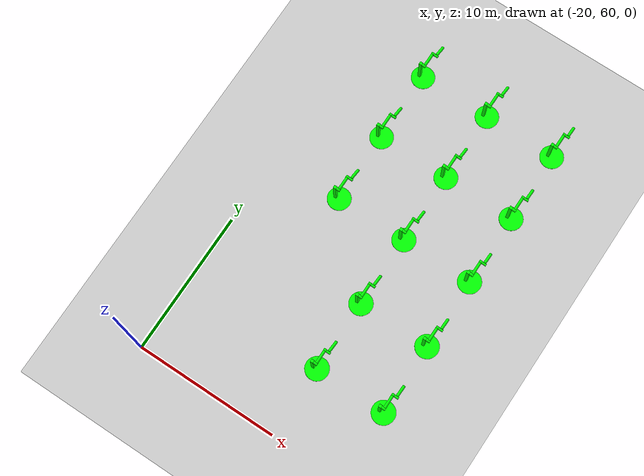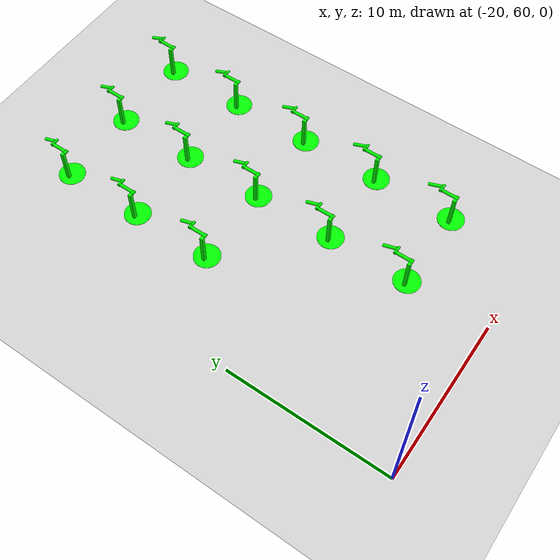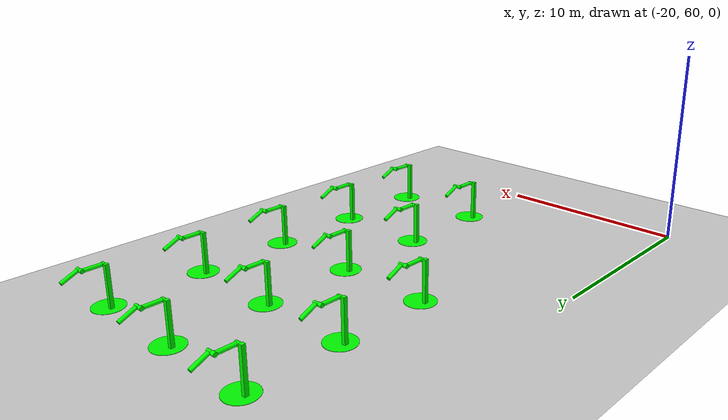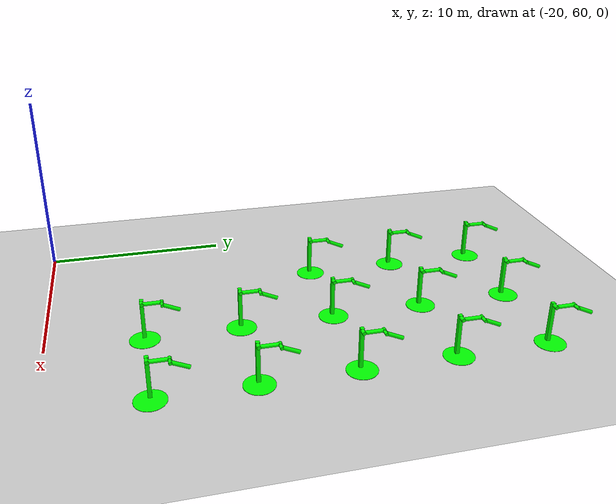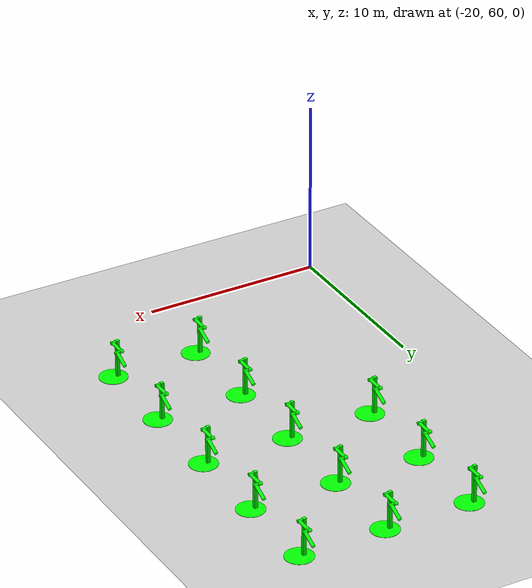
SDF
<sdf version="1.6">
 <world name="double_pendulums">
  <model name="ground_plane">
   <static>true</static>
   <link name="link">
    <collision name="collision">
     <geometry><plane><normal>0 0 1</normal><size>100 100</size></plane></geometry>
    </collision>
    <visual name="visual">
     <geometry><plane><normal>0 0 1</normal><size>100 100</size></plane></geometry>
     <material>
      <ambient>0.8 0.8 0.8 1</ambient>
      <diffuse>0.8 0.8 0.8 1</diffuse>
      <specular>0.8 0.8 0.8 1</specular>
     </material>
    </visual>
   </link>
  </model>
  <model name="dbl_pendulum_333">
   <pose>-10 65 0 0 0 0</pose>
   <link name="base">
    <inertial><mass>100</mass></inertial>
    <visual name="vis_plate_on_ground">
     <pose>0 0 0.01 0 0 0</pose>
     <geometry><cylinder><radius>0.8</radius><length>0.02</length></cylinder></geometry>
     <material><ambient>0 1 0 1</ambient><diffuse>0 1 0 1</diffuse><specular>0 1 0 1</specular></material>
    </visual>
    <visual name="vis_pole">
     <pose>-0.275 0 1.1 0 0 0</pose>
     <geometry><box><size>0.2 0.2 2.2</size></box></geometry>
     <material><ambient>0 1 0 1</ambient><diffuse>0 1 0 1</diffuse><specular>0 1 0 1</specular></material>
    </visual>
    <collision name="col_plate_on_ground">
     <pose>0 0 0.01 0 0 0</pose>
     <geometry><cylinder><radius>0.8</radius><length>0.02</length></cylinder></geometry>
    </collision>
    <collision name="col_pole">
     <pose>-0.275 0 1.1 0 0 0</pose>
     <geometry><box><size>0.2 0.2 2.2</size></box></geometry>
    </collision>
   </link>
   <link name="upper_link">
    <pose>0 0 2.1 -1.5708 0 0</pose>
    <inertial><pose>0 0 0.5 0 0 0</pose></inertial>
    <visual name="vis_upper_joint">
     <pose>-0.05 0 0 0 1.5708 0</pose>
     <geometry><cylinder><radius>0.1</radius><length>0.3</length></cylinder></geometry>
     <material><ambient>0 1 0 1</ambient><diffuse>0 1 0 1</diffuse><specular>0 1 0 1</specular></material>
    </visual>
    <visual name="vis_lower_joint">
     <pose>0 0 1.0 0 1.5708 0</pose>
     <geometry><cylinder><radius>0.1</radius><length>0.2</length></cylinder></geometry>
     <material><ambient>0 1 0 1</ambient><diffuse>0 1 0 1</diffuse><specular>0 1 0 1</specular></material>
    </visual>
    <visual name="vis_cylinder">
     <pose>0 0 0.5 0 0 0</pose>
     <geometry><cylinder><radius>0.1</radius><length>0.9</length></cylinder></geometry>
     <material><ambient>0 1 0 1</ambient><diffuse>0 1 0 1</diffuse><specular>0 1 0 1</specular></material>
    </visual>
    <collision name="col_upper_joint">
     <pose>-0.05 0 0 0 1.5708 0</pose>
     <geometry><cylinder><radius>0.1</radius><length>0.3</length></cylinder></geometry>
    </collision>
    <collision name="col_lower_joint">
     <pose>0 0 1.0 0 1.5708 0</pose>
     <geometry><cylinder><radius>0.1</radius><length>0.2</length></cylinder></geometry>
    </collision>
    <collision name="col_cylinder">
     <pose>0 0 0.5 0 0 0</pose>
     <geometry><cylinder><radius>0.1</radius><length>0.9</length></cylinder></geometry>
    </collision>
   </link>
   <link name="lower_link">
    <pose>0.25 1.0 2.1 -2 0 0</pose>
    <inertial><pose>0 0 0.5 0 0 0</pose></inertial>
    <visual name="vis_lower_joint">
     <pose>0 0 0 0 1.5708 0</pose>
     <geometry><cylinder><radius>0.08</radius><length>0.3</length></cylinder></geometry>
     <material><ambient>0 1 0 1</ambient><diffuse>0 1 0 1</diffuse><specular>0 1 0 1</specular></material>
    </visual>
    <visual name="vis_cylinder">
     <pose>0 0 0.5 0 0 0</pose>
     <geometry><cylinder><radius>0.1</radius><length>0.9</length></cylinder></geometry>
     <material><ambient>0 1 0 1</ambient><diffuse>0 1 0 1</diffuse><specular>0 1 0 1</specular></material>
    </visual>
    <collision name="col_lower_joint">
     <pose>0 0 0 0 1.5708 0</pose>
     <geometry><cylinder><radius>0.08</radius><length>0.3</length></cylinder></geometry>
    </collision>
    <collision name="col_cylinder">
     <pose>0 0 0.5 0 0 0</pose>
     <geometry><cylinder><radius>0.1</radius><length>0.9</length></cylinder></geometry>
    </collision>
   </link>
   <joint name="upper_joint" type="revolute">
    <parent>base</parent>
    <child>upper_link</child>
    <axis><xyz>1.0 0 0</xyz></axis>
   </joint>
   <joint name="lower_joint" type="revolute">
    <parent>upper_link</parent>
    <child>lower_link</child>
    <axis><xyz>1.0 0 0</xyz></axis>
   </joint>
  </model>
  <model name="dbl_pendulum_334">
   <pose>-5 65 0 0 0 0</pose>
   <link name="base">
    <inertial><mass>100</mass></inertial>
    <visual name="vis_plate_on_ground">
     <pose>0 0 0.01 0 0 0</pose>
     <geometry><cylinder><radius>0.8</radius><length>0.02</length></cylinder></geometry>
     <material><ambient>0 1 0 1</ambient><diffuse>0 1 0 1</diffuse><specular>0 1 0 1</specular></material>
    </visual>
    <visual name="vis_pole">
     <pose>-0.275 0 1.1 0 0 0</pose>
     <geometry><box><size>0.2 0.2 2.2</size></box></geometry>
     <material><ambient>0 1 0 1</ambient><diffuse>0 1 0 1</diffuse><specular>0 1 0 1</specular></material>
    </visual>
    <collision name="col_plate_on_ground">
     <pose>0 0 0.01 0 0 0</pose>
     <geometry><cylinder><radius>0.8</radius><length>0.02</length></cylinder></geometry>
    </collision>
    <collision name="col_pole">
     <pose>-0.275 0 1.1 0 0 0</pose>
     <geometry><box><size>0.2 0.2 2.2</size></box></geometry>
    </collision>
   </link>
   <link name="upper_link">
    <pose>0 0 2.1 -1.5708 0 0</pose>
    <inertial><pose>0 0 0.5 0 0 0</pose></inertial>
    <visual name="vis_upper_joint">
     <pose>-0.05 0 0 0 1.5708 0</pose>
     <geometry><cylinder><radius>0.1</radius><length>0.3</length></cylinder></geometry>
     <material><ambient>0 1 0 1</ambient><diffuse>0 1 0 1</diffuse><specular>0 1 0 1</specular></material>
    </visual>
    <visual name="vis_lower_joint">
     <pose>0 0 1.0 0 1.5708 0</pose>
     <geometry><cylinder><radius>0.1</radius><length>0.2</length></cylinder></geometry>
     <material><ambient>0 1 0 1</ambient><diffuse>0 1 0 1</diffuse><specular>0 1 0 1</specular></material>
    </visual>
    <visual name="vis_cylinder">
     <pose>0 0 0.5 0 0 0</pose>
     <geometry><cylinder><radius>0.1</radius><length>0.9</length></cylinder></geometry>
     <material><ambient>0 1 0 1</ambient><diffuse>0 1 0 1</diffuse><specular>0 1 0 1</specular></material>
    </visual>
    <collision name="col_upper_joint">
     <pose>-0.05 0 0 0 1.5708 0</pose>
     <geometry><cylinder><radius>0.1</radius><length>0.3</length></cylinder></geometry>
    </collision>
    <collision name="col_lower_joint">
     <pose>0 0 1.0 0 1.5708 0</pose>
     <geometry><cylinder><radius>0.1</radius><length>0.2</length></cylinder></geometry>
    </collision>
    <collision name="col_cylinder">
     <pose>0 0 0.5 0 0 0</pose>
     <geometry><cylinder><radius>0.1</radius><length>0.9</length></cylinder></geometry>
    </collision>
   </link>
   <link name="lower_link">
    <pose>0.25 1.0 2.1 -2 0 0</pose>
    <inertial><pose>0 0 0.5 0 0 0</pose></inertial>
    <visual name="vis_lower_joint">
     <pose>0 0 0 0 1.5708 0</pose>
     <geometry><cylinder><radius>0.08</radius><length>0.3</length></cylinder></geometry>
     <material><ambient>0 1 0 1</ambient><diffuse>0 1 0 1</diffuse><specular>0 1 0 1</specular></material>
    </visual>
    <visual name="vis_cylinder">
     <pose>0 0 0.5 0 0 0</pose>
     <geometry><cylinder><radius>0.1</radius><length>0.9</length></cylinder></geometry>
     <material><ambient>0 1 0 1</ambient><diffuse>0 1 0 1</diffuse><specular>0 1 0 1</specular></material>
    </visual>
    <collision name="col_lower_joint">
     <pose>0 0 0 0 1.5708 0</pose>
     <geometry><cylinder><radius>0.08</radius><length>0.3</length></cylinder></geometry>
    </collision>
    <collision name="col_cylinder">
     <pose>0 0 0.5 0 0 0</pose>
     <geometry><cylinder><radius>0.1</radius><length>0.9</length></cylinder></geometry>
    </collision>
   </link>
   <joint name="upper_joint" type="revolute">
    <parent>base</parent>
    <child>upper_link</child>
    <axis><xyz>1.0 0 0</xyz></axis>
   </joint>
   <joint name="lower_joint" type="revolute">
    <parent>upper_link</parent>
    <child>lower_link</child>
    <axis><xyz>1.0 0 0</xyz></axis>
   </joint>
  </model>
  <model name="dbl_pendulum_358">
   <pose>-10 70 0 0 0 0</pose>
   <link name="base">
    <inertial><mass>100</mass></inertial>
    <visual name="vis_plate_on_ground">
     <pose>0 0 0.01 0 0 0</pose>
     <geometry><cylinder><radius>0.8</radius><length>0.02</length></cylinder></geometry>
     <material><ambient>0 1 0 1</ambient><diffuse>0 1 0 1</diffuse><specular>0 1 0 1</specular></material>
    </visual>
    <visual name="vis_pole">
     <pose>-0.275 0 1.1 0 0 0</pose>
     <geometry><box><size>0.2 0.2 2.2</size></box></geometry>
     <material><ambient>0 1 0 1</ambient><diffuse>0 1 0 1</diffuse><specular>0 1 0 1</specular></material>
    </visual>
    <collision name="col_plate_on_ground">
     <pose>0 0 0.01 0 0 0</pose>
     <geometry><cylinder><radius>0.8</radius><length>0.02</length></cylinder></geometry>
    </collision>
    <collision name="col_pole">
     <pose>-0.275 0 1.1 0 0 0</pose>
     <geometry><box><size>0.2 0.2 2.2</size></box></geometry>
    </collision>
   </link>
   <link name="upper_link">
    <pose>0 0 2.1 -1.5708 0 0</pose>
    <inertial><pose>0 0 0.5 0 0 0</pose></inertial>
    <visual name="vis_upper_joint">
     <pose>-0.05 0 0 0 1.5708 0</pose>
     <geometry><cylinder><radius>0.1</radius><length>0.3</length></cylinder></geometry>
     <material><ambient>0 1 0 1</ambient><diffuse>0 1 0 1</diffuse><specular>0 1 0 1</specular></material>
    </visual>
    <visual name="vis_lower_joint">
     <pose>0 0 1.0 0 1.5708 0</pose>
     <geometry><cylinder><radius>0.1</radius><length>0.2</length></cylinder></geometry>
     <material><ambient>0 1 0 1</ambient><diffuse>0 1 0 1</diffuse><specular>0 1 0 1</specular></material>
    </visual>
    <visual name="vis_cylinder">
     <pose>0 0 0.5 0 0 0</pose>
     <geometry><cylinder><radius>0.1</radius><length>0.9</length></cylinder></geometry>
     <material><ambient>0 1 0 1</ambient><diffuse>0 1 0 1</diffuse><specular>0 1 0 1</specular></material>
    </visual>
    <collision name="col_upper_joint">
     <pose>-0.05 0 0 0 1.5708 0</pose>
     <geometry><cylinder><radius>0.1</radius><length>0.3</length></cylinder></geometry>
    </collision>
    <collision name="col_lower_joint">
     <pose>0 0 1.0 0 1.5708 0</pose>
     <geometry><cylinder><radius>0.1</radius><length>0.2</length></cylinder></geometry>
    </collision>
    <collision name="col_cylinder">
     <pose>0 0 0.5 0 0 0</pose>
     <geometry><cylinder><radius>0.1</radius><length>0.9</length></cylinder></geometry>
    </collision>
   </link>
   <link name="lower_link">
    <pose>0.25 1.0 2.1 -2 0 0</pose>
    <inertial><pose>0 0 0.5 0 0 0</pose></inertial>
    <visual name="vis_lower_joint">
     <pose>0 0 0 0 1.5708 0</pose>
     <geometry><cylinder><radius>0.08</radius><length>0.3</length></cylinder></geometry>
     <material><ambient>0 1 0 1</ambient><diffuse>0 1 0 1</diffuse><specular>0 1 0 1</specular></material>
    </visual>
    <visual name="vis_cylinder">
     <pose>0 0 0.5 0 0 0</pose>
     <geometry><cylinder><radius>0.1</radius><length>0.9</length></cylinder></geometry>
     <material><ambient>0 1 0 1</ambient><diffuse>0 1 0 1</diffuse><specular>0 1 0 1</specular></material>
    </visual>
    <collision name="col_lower_joint">
     <pose>0 0 0 0 1.5708 0</pose>
     <geometry><cylinder><radius>0.08</radius><length>0.3</length></cylinder></geometry>
    </collision>
    <collision name="col_cylinder">
     <pose>0 0 0.5 0 0 0</pose>
     <geometry><cylinder><radius>0.1</radius><length>0.9</length></cylinder></geometry>
    </collision>
   </link>
   <joint name="upper_joint" type="revolute">
    <parent>base</parent>
    <child>upper_link</child>
    <axis><xyz>1.0 0 0</xyz></axis>
   </joint>
   <joint name="lower_joint" type="revolute">
    <parent>upper_link</parent>
    <child>lower_link</child>
    <axis><xyz>1.0 0 0</xyz></axis>
   </joint>
  </model>
  <model name="dbl_pendulum_359">
   <pose>-5 70 0 0 0 0</pose>
   <link name="base">
    <inertial><mass>100</mass></inertial>
    <visual name="vis_plate_on_ground">
     <pose>0 0 0.01 0 0 0</pose>
     <geometry><cylinder><radius>0.8</radius><length>0.02</length></cylinder></geometry>
     <material><ambient>0 1 0 1</ambient><diffuse>0 1 0 1</diffuse><specular>0 1 0 1</specular></material>
    </visual>
    <visual name="vis_pole">
     <pose>-0.275 0 1.1 0 0 0</pose>
     <geometry><box><size>0.2 0.2 2.2</size></box></geometry>
     <material><ambient>0 1 0 1</ambient><diffuse>0 1 0 1</diffuse><specular>0 1 0 1</specular></material>
    </visual>
    <collision name="col_plate_on_ground">
     <pose>0 0 0.01 0 0 0</pose>
     <geometry><cylinder><radius>0.8</radius><length>0.02</length></cylinder></geometry>
    </collision>
    <collision name="col_pole">
     <pose>-0.275 0 1.1 0 0 0</pose>
     <geometry><box><size>0.2 0.2 2.2</size></box></geometry>
    </collision>
   </link>
   <link name="upper_link">
    <pose>0 0 2.1 -1.5708 0 0</pose>
    <inertial><pose>0 0 0.5 0 0 0</pose></inertial>
    <visual name="vis_upper_joint">
     <pose>-0.05 0 0 0 1.5708 0</pose>
     <geometry><cylinder><radius>0.1</radius><length>0.3</length></cylinder></geometry>
     <material><ambient>0 1 0 1</ambient><diffuse>0 1 0 1</diffuse><specular>0 1 0 1</specular></material>
    </visual>
    <visual name="vis_lower_joint">
     <pose>0 0 1.0 0 1.5708 0</pose>
     <geometry><cylinder><radius>0.1</radius><length>0.2</length></cylinder></geometry>
     <material><ambient>0 1 0 1</ambient><diffuse>0 1 0 1</diffuse><specular>0 1 0 1</specular></material>
    </visual>
    <visual name="vis_cylinder">
     <pose>0 0 0.5 0 0 0</pose>
     <geometry><cylinder><radius>0.1</radius><length>0.9</length></cylinder></geometry>
     <material><ambient>0 1 0 1</ambient><diffuse>0 1 0 1</diffuse><specular>0 1 0 1</specular></material>
    </visual>
    <collision name="col_upper_joint">
     <pose>-0.05 0 0 0 1.5708 0</pose>
     <geometry><cylinder><radius>0.1</radius><length>0.3</length></cylinder></geometry>
    </collision>
    <collision name="col_lower_joint">
     <pose>0 0 1.0 0 1.5708 0</pose>
     <geometry><cylinder><radius>0.1</radius><length>0.2</length></cylinder></geometry>
    </collision>
    <collision name="col_cylinder">
     <pose>0 0 0.5 0 0 0</pose>
     <geometry><cylinder><radius>0.1</radius><length>0.9</length></cylinder></geometry>
    </collision>
   </link>
   <link name="lower_link">
    <pose>0.25 1.0 2.1 -2 0 0</pose>
    <inertial><pose>0 0 0.5 0 0 0</pose></inertial>
    <visual name="vis_lower_joint">
     <pose>0 0 0 0 1.5708 0</pose>
     <geometry><cylinder><radius>0.08</radius><length>0.3</length></cylinder></geometry>
     <material><ambient>0 1 0 1</ambient><diffuse>0 1 0 1</diffuse><specular>0 1 0 1</specular></material>
    </visual>
    <visual name="vis_cylinder">
     <pose>0 0 0.5 0 0 0</pose>
     <geometry><cylinder><radius>0.1</radius><length>0.9</length></cylinder></geometry>
     <material><ambient>0 1 0 1</ambient><diffuse>0 1 0 1</diffuse><specular>0 1 0 1</specular></material>
    </visual>
    <collision name="col_lower_joint">
     <pose>0 0 0 0 1.5708 0</pose>
     <geometry><cylinder><radius>0.08</radius><length>0.3</length></cylinder></geometry>
    </collision>
    <collision name="col_cylinder">
     <pose>0 0 0.5 0 0 0</pose>
     <geometry><cylinder><radius>0.1</radius><length>0.9</length></cylinder></geometry>
    </collision>
   </link>
   <joint name="upper_joint" type="revolute">
    <parent>base</parent>
    <child>upper_link</child>
    <axis><xyz>1.0 0 0</xyz></axis>
   </joint>
   <joint name="lower_joint" type="revolute">
    <parent>upper_link</parent>
    <child>lower_link</child>
    <axis><xyz>1.0 0 0</xyz></axis>
   </joint>
  </model>
  <model name="dbl_pendulum_382">
   <pose>-15 75 0 0 0 0</pose>
   <link name="base">
    <inertial><mass>100</mass></inertial>
    <visual name="vis_plate_on_ground">
     <pose>0 0 0.01 0 0 0</pose>
     <geometry><cylinder><radius>0.8</radius><length>0.02</length></cylinder></geometry>
     <material><ambient>0 1 0 1</ambient><diffuse>0 1 0 1</diffuse><specular>0 1 0 1</specular></material>
    </visual>
    <visual name="vis_pole">
     <pose>-0.275 0 1.1 0 0 0</pose>
     <geometry><box><size>0.2 0.2 2.2</size></box></geometry>
     <material><ambient>0 1 0 1</ambient><diffuse>0 1 0 1</diffuse><specular>0 1 0 1</specular></material>
    </visual>
    <collision name="col_plate_on_ground">
     <pose>0 0 0.01 0 0 0</pose>
     <geometry><cylinder><radius>0.8</radius><length>0.02</length></cylinder></geometry>
    </collision>
    <collision name="col_pole">
     <pose>-0.275 0 1.1 0 0 0</pose>
     <geometry><box><size>0.2 0.2 2.2</size></box></geometry>
    </collision>
   </link>
   <link name="upper_link">
    <pose>0 0 2.1 -1.5708 0 0</pose>
    <inertial><pose>0 0 0.5 0 0 0</pose></inertial>
    <visual name="vis_upper_joint">
     <pose>-0.05 0 0 0 1.5708 0</pose>
     <geometry><cylinder><radius>0.1</radius><length>0.3</length></cylinder></geometry>
     <material><ambient>0 1 0 1</ambient><diffuse>0 1 0 1</diffuse><specular>0 1 0 1</specular></material>
    </visual>
    <visual name="vis_lower_joint">
     <pose>0 0 1.0 0 1.5708 0</pose>
     <geometry><cylinder><radius>0.1</radius><length>0.2</length></cylinder></geometry>
     <material><ambient>0 1 0 1</ambient><diffuse>0 1 0 1</diffuse><specular>0 1 0 1</specular></material>
    </visual>
    <visual name="vis_cylinder">
     <pose>0 0 0.5 0 0 0</pose>
     <geometry><cylinder><radius>0.1</radius><length>0.9</length></cylinder></geometry>
     <material><ambient>0 1 0 1</ambient><diffuse>0 1 0 1</diffuse><specular>0 1 0 1</specular></material>
    </visual>
    <collision name="col_upper_joint">
     <pose>-0.05 0 0 0 1.5708 0</pose>
     <geometry><cylinder><radius>0.1</radius><length>0.3</length></cylinder></geometry>
    </collision>
    <collision name="col_lower_joint">
     <pose>0 0 1.0 0 1.5708 0</pose>
     <geometry><cylinder><radius>0.1</radius><length>0.2</length></cylinder></geometry>
    </collision>
    <collision name="col_cylinder">
     <pose>0 0 0.5 0 0 0</pose>
     <geometry><cylinder><radius>0.1</radius><length>0.9</length></cylinder></geometry>
    </collision>
   </link>
   <link name="lower_link">
    <pose>0.25 1.0 2.1 -2 0 0</pose>
    <inertial><pose>0 0 0.5 0 0 0</pose></inertial>
    <visual name="vis_lower_joint">
     <pose>0 0 0 0 1.5708 0</pose>
     <geometry><cylinder><radius>0.08</radius><length>0.3</length></cylinder></geometry>
     <material><ambient>0 1 0 1</ambient><diffuse>0 1 0 1</diffuse><specular>0 1 0 1</specular></material>
    </visual>
    <visual name="vis_cylinder">
     <pose>0 0 0.5 0 0 0</pose>
     <geometry><cylinder><radius>0.1</radius><length>0.9</length></cylinder></geometry>
     <material><ambient>0 1 0 1</ambient><diffuse>0 1 0 1</diffuse><specular>0 1 0 1</specular></material>
    </visual>
    <collision name="col_lower_joint">
     <pose>0 0 0 0 1.5708 0</pose>
     <geometry><cylinder><radius>0.08</radius><length>0.3</length></cylinder></geometry>
    </collision>
    <collision name="col_cylinder">
     <pose>0 0 0.5 0 0 0</pose>
     <geometry><cylinder><radius>0.1</radius><length>0.9</length></cylinder></geometry>
    </collision>
   </link>
   <joint name="upper_joint" type="revolute">
    <parent>base</parent>
    <child>upper_link</child>
    <axis><xyz>1.0 0 0</xyz></axis>
   </joint>
   <joint name="lower_joint" type="revolute">
    <parent>upper_link</parent>
    <child>lower_link</child>
    <axis><xyz>1.0 0 0</xyz></axis>
   </joint>
  </model>
  <model name="dbl_pendulum_383">
   <pose>-10 75 0 0 0 0</pose>
   <link name="base">
    <inertial><mass>100</mass></inertial>
    <visual name="vis_plate_on_ground">
     <pose>0 0 0.01 0 0 0</pose>
     <geometry><cylinder><radius>0.8</radius><length>0.02</length></cylinder></geometry>
     <material><ambient>0 1 0 1</ambient><diffuse>0 1 0 1</diffuse><specular>0 1 0 1</specular></material>
    </visual>
    <visual name="vis_pole">
     <pose>-0.275 0 1.1 0 0 0</pose>
     <geometry><box><size>0.2 0.2 2.2</size></box></geometry>
     <material><ambient>0 1 0 1</ambient><diffuse>0 1 0 1</diffuse><specular>0 1 0 1</specular></material>
    </visual>
    <collision name="col_plate_on_ground">
     <pose>0 0 0.01 0 0 0</pose>
     <geometry><cylinder><radius>0.8</radius><length>0.02</length></cylinder></geometry>
    </collision>
    <collision name="col_pole">
     <pose>-0.275 0 1.1 0 0 0</pose>
     <geometry><box><size>0.2 0.2 2.2</size></box></geometry>
    </collision>
   </link>
   <link name="upper_link">
    <pose>0 0 2.1 -1.5708 0 0</pose>
    <inertial><pose>0 0 0.5 0 0 0</pose></inertial>
    <visual name="vis_upper_joint">
     <pose>-0.05 0 0 0 1.5708 0</pose>
     <geometry><cylinder><radius>0.1</radius><length>0.3</length></cylinder></geometry>
     <material><ambient>0 1 0 1</ambient><diffuse>0 1 0 1</diffuse><specular>0 1 0 1</specular></material>
    </visual>
    <visual name="vis_lower_joint">
     <pose>0 0 1.0 0 1.5708 0</pose>
     <geometry><cylinder><radius>0.1</radius><length>0.2</length></cylinder></geometry>
     <material><ambient>0 1 0 1</ambient><diffuse>0 1 0 1</diffuse><specular>0 1 0 1</specular></material>
    </visual>
    <visual name="vis_cylinder">
     <pose>0 0 0.5 0 0 0</pose>
     <geometry><cylinder><radius>0.1</radius><length>0.9</length></cylinder></geometry>
     <material><ambient>0 1 0 1</ambient><diffuse>0 1 0 1</diffuse><specular>0 1 0 1</specular></material>
    </visual>
    <collision name="col_upper_joint">
     <pose>-0.05 0 0 0 1.5708 0</pose>
     <geometry><cylinder><radius>0.1</radius><length>0.3</length></cylinder></geometry>
    </collision>
    <collision name="col_lower_joint">
     <pose>0 0 1.0 0 1.5708 0</pose>
     <geometry><cylinder><radius>0.1</radius><length>0.2</length></cylinder></geometry>
    </collision>
    <collision name="col_cylinder">
     <pose>0 0 0.5 0 0 0</pose>
     <geometry><cylinder><radius>0.1</radius><length>0.9</length></cylinder></geometry>
    </collision>
   </link>
   <link name="lower_link">
    <pose>0.25 1.0 2.1 -2 0 0</pose>
    <inertial><pose>0 0 0.5 0 0 0</pose></inertial>
    <visual name="vis_lower_joint">
     <pose>0 0 0 0 1.5708 0</pose>
     <geometry><cylinder><radius>0.08</radius><length>0.3</length></cylinder></geometry>
     <material><ambient>0 1 0 1</ambient><diffuse>0 1 0 1</diffuse><specular>0 1 0 1</specular></material>
    </visual>
    <visual name="vis_cylinder">
     <pose>0 0 0.5 0 0 0</pose>
     <geometry><cylinder><radius>0.1</radius><length>0.9</length></cylinder></geometry>
     <material><ambient>0 1 0 1</ambient><diffuse>0 1 0 1</diffuse><specular>0 1 0 1</specular></material>
    </visual>
    <collision name="col_lower_joint">
     <pose>0 0 0 0 1.5708 0</pose>
     <geometry><cylinder><radius>0.08</radius><length>0.3</length></cylinder></geometry>
    </collision>
    <collision name="col_cylinder">
     <pose>0 0 0.5 0 0 0</pose>
     <geometry><cylinder><radius>0.1</radius><length>0.9</length></cylinder></geometry>
    </collision>
   </link>
   <joint name="upper_joint" type="revolute">
    <parent>base</parent>
    <child>upper_link</child>
    <axis><xyz>1.0 0 0</xyz></axis>
   </joint>
   <joint name="lower_joint" type="revolute">
    <parent>upper_link</parent>
    <child>lower_link</child>
    <axis><xyz>1.0 0 0</xyz></axis>
   </joint>
  </model>
  <model name="dbl_pendulum_384">
   <pose>-5 75 0 0 0 0</pose>
   <link name="base">
    <inertial><mass>100</mass></inertial>
    <visual name="vis_plate_on_ground">
     <pose>0 0 0.01 0 0 0</pose>
     <geometry><cylinder><radius>0.8</radius><length>0.02</length></cylinder></geometry>
     <material><ambient>0 1 0 1</ambient><diffuse>0 1 0 1</diffuse><specular>0 1 0 1</specular></material>
    </visual>
    <visual name="vis_pole">
     <pose>-0.275 0 1.1 0 0 0</pose>
     <geometry><box><size>0.2 0.2 2.2</size></box></geometry>
     <material><ambient>0 1 0 1</ambient><diffuse>0 1 0 1</diffuse><specular>0 1 0 1</specular></material>
    </visual>
    <collision name="col_plate_on_ground">
     <pose>0 0 0.01 0 0 0</pose>
     <geometry><cylinder><radius>0.8</radius><length>0.02</length></cylinder></geometry>
    </collision>
    <collision name="col_pole">
     <pose>-0.275 0 1.1 0 0 0</pose>
     <geometry><box><size>0.2 0.2 2.2</size></box></geometry>
    </collision>
   </link>
   <link name="upper_link">
    <pose>0 0 2.1 -1.5708 0 0</pose>
    <inertial><pose>0 0 0.5 0 0 0</pose></inertial>
    <visual name="vis_upper_joint">
     <pose>-0.05 0 0 0 1.5708 0</pose>
     <geometry><cylinder><radius>0.1</radius><length>0.3</length></cylinder></geometry>
     <material><ambient>0 1 0 1</ambient><diffuse>0 1 0 1</diffuse><specular>0 1 0 1</specular></material>
    </visual>
    <visual name="vis_lower_joint">
     <pose>0 0 1.0 0 1.5708 0</pose>
     <geometry><cylinder><radius>0.1</radius><length>0.2</length></cylinder></geometry>
     <material><ambient>0 1 0 1</ambient><diffuse>0 1 0 1</diffuse><specular>0 1 0 1</specular></material>
    </visual>
    <visual name="vis_cylinder">
     <pose>0 0 0.5 0 0 0</pose>
     <geometry><cylinder><radius>0.1</radius><length>0.9</length></cylinder></geometry>
     <material><ambient>0 1 0 1</ambient><diffuse>0 1 0 1</diffuse><specular>0 1 0 1</specular></material>
    </visual>
    <collision name="col_upper_joint">
     <pose>-0.05 0 0 0 1.5708 0</pose>
     <geometry><cylinder><radius>0.1</radius><length>0.3</length></cylinder></geometry>
    </collision>
    <collision name="col_lower_joint">
     <pose>0 0 1.0 0 1.5708 0</pose>
     <geometry><cylinder><radius>0.1</radius><length>0.2</length></cylinder></geometry>
    </collision>
    <collision name="col_cylinder">
     <pose>0 0 0.5 0 0 0</pose>
     <geometry><cylinder><radius>0.1</radius><length>0.9</length></cylinder></geometry>
    </collision>
   </link>
   <link name="lower_link">
    <pose>0.25 1.0 2.1 -2 0 0</pose>
    <inertial><pose>0 0 0.5 0 0 0</pose></inertial>
    <visual name="vis_lower_joint">
     <pose>0 0 0 0 1.5708 0</pose>
     <geometry><cylinder><radius>0.08</radius><length>0.3</length></cylinder></geometry>
     <material><ambient>0 1 0 1</ambient><diffuse>0 1 0 1</diffuse><specular>0 1 0 1</specular></material>
    </visual>
    <visual name="vis_cylinder">
     <pose>0 0 0.5 0 0 0</pose>
     <geometry><cylinder><radius>0.1</radius><length>0.9</length></cylinder></geometry>
     <material><ambient>0 1 0 1</ambient><diffuse>0 1 0 1</diffuse><specular>0 1 0 1</specular></material>
    </visual>
    <collision name="col_lower_joint">
     <pose>0 0 0 0 1.5708 0</pose>
     <geometry><cylinder><radius>0.08</radius><length>0.3</length></cylinder></geometry>
    </collision>
    <collision name="col_cylinder">
     <pose>0 0 0.5 0 0 0</pose>
     <geometry><cylinder><radius>0.1</radius><length>0.9</length></cylinder></geometry>
    </collision>
   </link>
   <joint name="upper_joint" type="revolute">
    <parent>base</parent>
    <child>upper_link</child>
    <axis><xyz>1.0 0 0</xyz></axis>
   </joint>
   <joint name="lower_joint" type="revolute">
    <parent>upper_link</parent>
    <child>lower_link</child>
    <axis><xyz>1.0 0 0</xyz></axis>
   </joint>
  </model>
  <model name="dbl_pendulum_407">
   <pose>-15 80 0 0 0 0</pose>
   <link name="base">
    <inertial><mass>100</mass></inertial>
    <visual name="vis_plate_on_ground">
     <pose>0 0 0.01 0 0 0</pose>
     <geometry><cylinder><radius>0.8</radius><length>0.02</length></cylinder></geometry>
     <material><ambient>0 1 0 1</ambient><diffuse>0 1 0 1</diffuse><specular>0 1 0 1</specular></material>
    </visual>
    <visual name="vis_pole">
     <pose>-0.275 0 1.1 0 0 0</pose>
     <geometry><box><size>0.2 0.2 2.2</size></box></geometry>
     <material><ambient>0 1 0 1</ambient><diffuse>0 1 0 1</diffuse><specular>0 1 0 1</specular></material>
    </visual>
    <collision name="col_plate_on_ground">
     <pose>0 0 0.01 0 0 0</pose>
     <geometry><cylinder><radius>0.8</radius><length>0.02</length></cylinder></geometry>
    </collision>
    <collision name="col_pole">
     <pose>-0.275 0 1.1 0 0 0</pose>
     <geometry><box><size>0.2 0.2 2.2</size></box></geometry>
    </collision>
   </link>
   <link name="upper_link">
    <pose>0 0 2.1 -1.5708 0 0</pose>
    <inertial><pose>0 0 0.5 0 0 0</pose></inertial>
    <visual name="vis_upper_joint">
     <pose>-0.05 0 0 0 1.5708 0</pose>
     <geometry><cylinder><radius>0.1</radius><length>0.3</length></cylinder></geometry>
     <material><ambient>0 1 0 1</ambient><diffuse>0 1 0 1</diffuse><specular>0 1 0 1</specular></material>
    </visual>
    <visual name="vis_lower_joint">
     <pose>0 0 1.0 0 1.5708 0</pose>
     <geometry><cylinder><radius>0.1</radius><length>0.2</length></cylinder></geometry>
     <material><ambient>0 1 0 1</ambient><diffuse>0 1 0 1</diffuse><specular>0 1 0 1</specular></material>
    </visual>
    <visual name="vis_cylinder">
     <pose>0 0 0.5 0 0 0</pose>
     <geometry><cylinder><radius>0.1</radius><length>0.9</length></cylinder></geometry>
     <material><ambient>0 1 0 1</ambient><diffuse>0 1 0 1</diffuse><specular>0 1 0 1</specular></material>
    </visual>
    <collision name="col_upper_joint">
     <pose>-0.05 0 0 0 1.5708 0</pose>
     <geometry><cylinder><radius>0.1</radius><length>0.3</length></cylinder></geometry>
    </collision>
    <collision name="col_lower_joint">
     <pose>0 0 1.0 0 1.5708 0</pose>
     <geometry><cylinder><radius>0.1</radius><length>0.2</length></cylinder></geometry>
    </collision>
    <collision name="col_cylinder">
     <pose>0 0 0.5 0 0 0</pose>
     <geometry><cylinder><radius>0.1</radius><length>0.9</length></cylinder></geometry>
    </collision>
   </link>
   <link name="lower_link">
    <pose>0.25 1.0 2.1 -2 0 0</pose>
    <inertial><pose>0 0 0.5 0 0 0</pose></inertial>
    <visual name="vis_lower_joint">
     <pose>0 0 0 0 1.5708 0</pose>
     <geometry><cylinder><radius>0.08</radius><length>0.3</length></cylinder></geometry>
     <material><ambient>0 1 0 1</ambient><diffuse>0 1 0 1</diffuse><specular>0 1 0 1</specular></material>
    </visual>
    <visual name="vis_cylinder">
     <pose>0 0 0.5 0 0 0</pose>
     <geometry><cylinder><radius>0.1</radius><length>0.9</length></cylinder></geometry>
     <material><ambient>0 1 0 1</ambient><diffuse>0 1 0 1</diffuse><specular>0 1 0 1</specular></material>
    </visual>
    <collision name="col_lower_joint">
     <pose>0 0 0 0 1.5708 0</pose>
     <geometry><cylinder><radius>0.08</radius><length>0.3</length></cylinder></geometry>
    </collision>
    <collision name="col_cylinder">
     <pose>0 0 0.5 0 0 0</pose>
     <geometry><cylinder><radius>0.1</radius><length>0.9</length></cylinder></geometry>
    </collision>
   </link>
   <joint name="upper_joint" type="revolute">
    <parent>base</parent>
    <child>upper_link</child>
    <axis><xyz>1.0 0 0</xyz></axis>
   </joint>
   <joint name="lower_joint" type="revolute">
    <parent>upper_link</parent>
    <child>lower_link</child>
    <axis><xyz>1.0 0 0</xyz></axis>
   </joint>
  </model>
  <model name="dbl_pendulum_408">
   <pose>-10 80 0 0 0 0</pose>
   <link name="base">
    <inertial><mass>100</mass></inertial>
    <visual name="vis_plate_on_ground">
     <pose>0 0 0.01 0 0 0</pose>
     <geometry><cylinder><radius>0.8</radius><length>0.02</length></cylinder></geometry>
     <material><ambient>0 1 0 1</ambient><diffuse>0 1 0 1</diffuse><specular>0 1 0 1</specular></material>
    </visual>
    <visual name="vis_pole">
     <pose>-0.275 0 1.1 0 0 0</pose>
     <geometry><box><size>0.2 0.2 2.2</size></box></geometry>
     <material><ambient>0 1 0 1</ambient><diffuse>0 1 0 1</diffuse><specular>0 1 0 1</specular></material>
    </visual>
    <collision name="col_plate_on_ground">
     <pose>0 0 0.01 0 0 0</pose>
     <geometry><cylinder><radius>0.8</radius><length>0.02</length></cylinder></geometry>
    </collision>
    <collision name="col_pole">
     <pose>-0.275 0 1.1 0 0 0</pose>
     <geometry><box><size>0.2 0.2 2.2</size></box></geometry>
    </collision>
   </link>
   <link name="upper_link">
    <pose>0 0 2.1 -1.5708 0 0</pose>
    <inertial><pose>0 0 0.5 0 0 0</pose></inertial>
    <visual name="vis_upper_joint">
     <pose>-0.05 0 0 0 1.5708 0</pose>
     <geometry><cylinder><radius>0.1</radius><length>0.3</length></cylinder></geometry>
     <material><ambient>0 1 0 1</ambient><diffuse>0 1 0 1</diffuse><specular>0 1 0 1</specular></material>
    </visual>
    <visual name="vis_lower_joint">
     <pose>0 0 1.0 0 1.5708 0</pose>
     <geometry><cylinder><radius>0.1</radius><length>0.2</length></cylinder></geometry>
     <material><ambient>0 1 0 1</ambient><diffuse>0 1 0 1</diffuse><specular>0 1 0 1</specular></material>
    </visual>
    <visual name="vis_cylinder">
     <pose>0 0 0.5 0 0 0</pose>
     <geometry><cylinder><radius>0.1</radius><length>0.9</length></cylinder></geometry>
     <material><ambient>0 1 0 1</ambient><diffuse>0 1 0 1</diffuse><specular>0 1 0 1</specular></material>
    </visual>
    <collision name="col_upper_joint">
     <pose>-0.05 0 0 0 1.5708 0</pose>
     <geometry><cylinder><radius>0.1</radius><length>0.3</length></cylinder></geometry>
    </collision>
    <collision name="col_lower_joint">
     <pose>0 0 1.0 0 1.5708 0</pose>
     <geometry><cylinder><radius>0.1</radius><length>0.2</length></cylinder></geometry>
    </collision>
    <collision name="col_cylinder">
     <pose>0 0 0.5 0 0 0</pose>
     <geometry><cylinder><radius>0.1</radius><length>0.9</length></cylinder></geometry>
    </collision>
   </link>
   <link name="lower_link">
    <pose>0.25 1.0 2.1 -2 0 0</pose>
    <inertial><pose>0 0 0.5 0 0 0</pose></inertial>
    <visual name="vis_lower_joint">
     <pose>0 0 0 0 1.5708 0</pose>
     <geometry><cylinder><radius>0.08</radius><length>0.3</length></cylinder></geometry>
     <material><ambient>0 1 0 1</ambient><diffuse>0 1 0 1</diffuse><specular>0 1 0 1</specular></material>
    </visual>
    <visual name="vis_cylinder">
     <pose>0 0 0.5 0 0 0</pose>
     <geometry><cylinder><radius>0.1</radius><length>0.9</length></cylinder></geometry>
     <material><ambient>0 1 0 1</ambient><diffuse>0 1 0 1</diffuse><specular>0 1 0 1</specular></material>
    </visual>
    <collision name="col_lower_joint">
     <pose>0 0 0 0 1.5708 0</pose>
     <geometry><cylinder><radius>0.08</radius><length>0.3</length></cylinder></geometry>
    </collision>
    <collision name="col_cylinder">
     <pose>0 0 0.5 0 0 0</pose>
     <geometry><cylinder><radius>0.1</radius><length>0.9</length></cylinder></geometry>
    </collision>
   </link>
   <joint name="upper_joint" type="revolute">
    <parent>base</parent>
    <child>upper_link</child>
    <axis><xyz>1.0 0 0</xyz></axis>
   </joint>
   <joint name="lower_joint" type="revolute">
    <parent>upper_link</parent>
    <child>lower_link</child>
    <axis><xyz>1.0 0 0</xyz></axis>
   </joint>
  </model>
  <model name="dbl_pendulum_409">
   <pose>-5 80 0 0 0 0</pose>
   <link name="base">
    <inertial><mass>100</mass></inertial>
    <visual name="vis_plate_on_ground">
     <pose>0 0 0.01 0 0 0</pose>
     <geometry><cylinder><radius>0.8</radius><length>0.02</length></cylinder></geometry>
     <material><ambient>0 1 0 1</ambient><diffuse>0 1 0 1</diffuse><specular>0 1 0 1</specular></material>
    </visual>
    <visual name="vis_pole">
     <pose>-0.275 0 1.1 0 0 0</pose>
     <geometry><box><size>0.2 0.2 2.2</size></box></geometry>
     <material><ambient>0 1 0 1</ambient><diffuse>0 1 0 1</diffuse><specular>0 1 0 1</specular></material>
    </visual>
    <collision name="col_plate_on_ground">
     <pose>0 0 0.01 0 0 0</pose>
     <geometry><cylinder><radius>0.8</radius><length>0.02</length></cylinder></geometry>
    </collision>
    <collision name="col_pole">
     <pose>-0.275 0 1.1 0 0 0</pose>
     <geometry><box><size>0.2 0.2 2.2</size></box></geometry>
    </collision>
   </link>
   <link name="upper_link">
    <pose>0 0 2.1 -1.5708 0 0</pose>
    <inertial><pose>0 0 0.5 0 0 0</pose></inertial>
    <visual name="vis_upper_joint">
     <pose>-0.05 0 0 0 1.5708 0</pose>
     <geometry><cylinder><radius>0.1</radius><length>0.3</length></cylinder></geometry>
     <material><ambient>0 1 0 1</ambient><diffuse>0 1 0 1</diffuse><specular>0 1 0 1</specular></material>
    </visual>
    <visual name="vis_lower_joint">
     <pose>0 0 1.0 0 1.5708 0</pose>
     <geometry><cylinder><radius>0.1</radius><length>0.2</length></cylinder></geometry>
     <material><ambient>0 1 0 1</ambient><diffuse>0 1 0 1</diffuse><specular>0 1 0 1</specular></material>
    </visual>
    <visual name="vis_cylinder">
     <pose>0 0 0.5 0 0 0</pose>
     <geometry><cylinder><radius>0.1</radius><length>0.9</length></cylinder></geometry>
     <material><ambient>0 1 0 1</ambient><diffuse>0 1 0 1</diffuse><specular>0 1 0 1</specular></material>
    </visual>
    <collision name="col_upper_joint">
     <pose>-0.05 0 0 0 1.5708 0</pose>
     <geometry><cylinder><radius>0.1</radius><length>0.3</length></cylinder></geometry>
    </collision>
    <collision name="col_lower_joint">
     <pose>0 0 1.0 0 1.5708 0</pose>
     <geometry><cylinder><radius>0.1</radius><length>0.2</length></cylinder></geometry>
    </collision>
    <collision name="col_cylinder">
     <pose>0 0 0.5 0 0 0</pose>
     <geometry><cylinder><radius>0.1</radius><length>0.9</length></cylinder></geometry>
    </collision>
   </link>
   <link name="lower_link">
    <pose>0.25 1.0 2.1 -2 0 0</pose>
    <inertial><pose>0 0 0.5 0 0 0</pose></inertial>
    <visual name="vis_lower_joint">
     <pose>0 0 0 0 1.5708 0</pose>
     <geometry><cylinder><radius>0.08</radius><length>0.3</length></cylinder></geometry>
     <material><ambient>0 1 0 1</ambient><diffuse>0 1 0 1</diffuse><specular>0 1 0 1</specular></material>
    </visual>
    <visual name="vis_cylinder">
     <pose>0 0 0.5 0 0 0</pose>
     <geometry><cylinder><radius>0.1</radius><length>0.9</length></cylinder></geometry>
     <material><ambient>0 1 0 1</ambient><diffuse>0 1 0 1</diffuse><specular>0 1 0 1</specular></material>
    </visual>
    <collision name="col_lower_joint">
     <pose>0 0 0 0 1.5708 0</pose>
     <geometry><cylinder><radius>0.08</radius><length>0.3</length></cylinder></geometry>
    </collision>
    <collision name="col_cylinder">
     <pose>0 0 0.5 0 0 0</pose>
     <geometry><cylinder><radius>0.1</radius><length>0.9</length></cylinder></geometry>
    </collision>
   </link>
   <joint name="upper_joint" type="revolute">
    <parent>base</parent>
    <child>upper_link</child>
    <axis><xyz>1.0 0 0</xyz></axis>
   </joint>
   <joint name="lower_joint" type="revolute">
    <parent>upper_link</parent>
    <child>lower_link</child>
    <axis><xyz>1.0 0 0</xyz></axis>
   </joint>
  </model>
  <model name="dbl_pendulum_432">
   <pose>-15 85 0 0 0 0</pose>
   <link name="base">
    <inertial><mass>100</mass></inertial>
    <visual name="vis_plate_on_ground">
     <pose>0 0 0.01 0 0 0</pose>
     <geometry><cylinder><radius>0.8</radius><length>0.02</length></cylinder></geometry>
     <material><ambient>0 1 0 1</ambient><diffuse>0 1 0 1</diffuse><specular>0 1 0 1</specular></material>
    </visual>
    <visual name="vis_pole">
     <pose>-0.275 0 1.1 0 0 0</pose>
     <geometry><box><size>0.2 0.2 2.2</size></box></geometry>
     <material><ambient>0 1 0 1</ambient><diffuse>0 1 0 1</diffuse><specular>0 1 0 1</specular></material>
    </visual>
    <collision name="col_plate_on_ground">
     <pose>0 0 0.01 0 0 0</pose>
     <geometry><cylinder><radius>0.8</radius><length>0.02</length></cylinder></geometry>
    </collision>
    <collision name="col_pole">
     <pose>-0.275 0 1.1 0 0 0</pose>
     <geometry><box><size>0.2 0.2 2.2</size></box></geometry>
    </collision>
   </link>
   <link name="upper_link">
    <pose>0 0 2.1 -1.5708 0 0</pose>
    <inertial><pose>0 0 0.5 0 0 0</pose></inertial>
    <visual name="vis_upper_joint">
     <pose>-0.05 0 0 0 1.5708 0</pose>
     <geometry><cylinder><radius>0.1</radius><length>0.3</length></cylinder></geometry>
     <material><ambient>0 1 0 1</ambient><diffuse>0 1 0 1</diffuse><specular>0 1 0 1</specular></material>
    </visual>
    <visual name="vis_lower_joint">
     <pose>0 0 1.0 0 1.5708 0</pose>
     <geometry><cylinder><radius>0.1</radius><length>0.2</length></cylinder></geometry>
     <material><ambient>0 1 0 1</ambient><diffuse>0 1 0 1</diffuse><specular>0 1 0 1</specular></material>
    </visual>
    <visual name="vis_cylinder">
     <pose>0 0 0.5 0 0 0</pose>
     <geometry><cylinder><radius>0.1</radius><length>0.9</length></cylinder></geometry>
     <material><ambient>0 1 0 1</ambient><diffuse>0 1 0 1</diffuse><specular>0 1 0 1</specular></material>
    </visual>
    <collision name="col_upper_joint">
     <pose>-0.05 0 0 0 1.5708 0</pose>
     <geometry><cylinder><radius>0.1</radius><length>0.3</length></cylinder></geometry>
    </collision>
    <collision name="col_lower_joint">
     <pose>0 0 1.0 0 1.5708 0</pose>
     <geometry><cylinder><radius>0.1</radius><length>0.2</length></cylinder></geometry>
    </collision>
    <collision name="col_cylinder">
     <pose>0 0 0.5 0 0 0</pose>
     <geometry><cylinder><radius>0.1</radius><length>0.9</length></cylinder></geometry>
    </collision>
   </link>
   <link name="lower_link">
    <pose>0.25 1.0 2.1 -2 0 0</pose>
    <inertial><pose>0 0 0.5 0 0 0</pose></inertial>
    <visual name="vis_lower_joint">
     <pose>0 0 0 0 1.5708 0</pose>
     <geometry><cylinder><radius>0.08</radius><length>0.3</length></cylinder></geometry>
     <material><ambient>0 1 0 1</ambient><diffuse>0 1 0 1</diffuse><specular>0 1 0 1</specular></material>
    </visual>
    <visual name="vis_cylinder">
     <pose>0 0 0.5 0 0 0</pose>
     <geometry><cylinder><radius>0.1</radius><length>0.9</length></cylinder></geometry>
     <material><ambient>0 1 0 1</ambient><diffuse>0 1 0 1</diffuse><specular>0 1 0 1</specular></material>
    </visual>
    <collision name="col_lower_joint">
     <pose>0 0 0 0 1.5708 0</pose>
     <geometry><cylinder><radius>0.08</radius><length>0.3</length></cylinder></geometry>
    </collision>
    <collision name="col_cylinder">
     <pose>0 0 0.5 0 0 0</pose>
     <geometry><cylinder><radius>0.1</radius><length>0.9</length></cylinder></geometry>
    </collision>
   </link>
   <joint name="upper_joint" type="revolute">
    <parent>base</parent>
    <child>upper_link</child>
    <axis><xyz>1.0 0 0</xyz></axis>
   </joint>
   <joint name="lower_joint" type="revolute">
    <parent>upper_link</parent>
    <child>lower_link</child>
    <axis><xyz>1.0 0 0</xyz></axis>
   </joint>
  </model>
  <model name="dbl_pendulum_433">
   <pose>-10 85 0 0 0 0</pose>
   <link name="base">
    <inertial><mass>100</mass></inertial>
    <visual name="vis_plate_on_ground">
     <pose>0 0 0.01 0 0 0</pose>
     <geometry><cylinder><radius>0.8</radius><length>0.02</length></cylinder></geometry>
     <material><ambient>0 1 0 1</ambient><diffuse>0 1 0 1</diffuse><specular>0 1 0 1</specular></material>
    </visual>
    <visual name="vis_pole">
     <pose>-0.275 0 1.1 0 0 0</pose>
     <geometry><box><size>0.2 0.2 2.2</size></box></geometry>
     <material><ambient>0 1 0 1</ambient><diffuse>0 1 0 1</diffuse><specular>0 1 0 1</specular></material>
    </visual>
    <collision name="col_plate_on_ground">
     <pose>0 0 0.01 0 0 0</pose>
     <geometry><cylinder><radius>0.8</radius><length>0.02</length></cylinder></geometry>
    </collision>
    <collision name="col_pole">
     <pose>-0.275 0 1.1 0 0 0</pose>
     <geometry><box><size>0.2 0.2 2.2</size></box></geometry>
    </collision>
   </link>
   <link name="upper_link">
    <pose>0 0 2.1 -1.5708 0 0</pose>
    <inertial><pose>0 0 0.5 0 0 0</pose></inertial>
    <visual name="vis_upper_joint">
     <pose>-0.05 0 0 0 1.5708 0</pose>
     <geometry><cylinder><radius>0.1</radius><length>0.3</length></cylinder></geometry>
     <material><ambient>0 1 0 1</ambient><diffuse>0 1 0 1</diffuse><specular>0 1 0 1</specular></material>
    </visual>
    <visual name="vis_lower_joint">
     <pose>0 0 1.0 0 1.5708 0</pose>
     <geometry><cylinder><radius>0.1</radius><length>0.2</length></cylinder></geometry>
     <material><ambient>0 1 0 1</ambient><diffuse>0 1 0 1</diffuse><specular>0 1 0 1</specular></material>
    </visual>
    <visual name="vis_cylinder">
     <pose>0 0 0.5 0 0 0</pose>
     <geometry><cylinder><radius>0.1</radius><length>0.9</length></cylinder></geometry>
     <material><ambient>0 1 0 1</ambient><diffuse>0 1 0 1</diffuse><specular>0 1 0 1</specular></material>
    </visual>
    <collision name="col_upper_joint">
     <pose>-0.05 0 0 0 1.5708 0</pose>
     <geometry><cylinder><radius>0.1</radius><length>0.3</length></cylinder></geometry>
    </collision>
    <collision name="col_lower_joint">
     <pose>0 0 1.0 0 1.5708 0</pose>
     <geometry><cylinder><radius>0.1</radius><length>0.2</length></cylinder></geometry>
    </collision>
    <collision name="col_cylinder">
     <pose>0 0 0.5 0 0 0</pose>
     <geometry><cylinder><radius>0.1</radius><length>0.9</length></cylinder></geometry>
    </collision>
   </link>
   <link name="lower_link">
    <pose>0.25 1.0 2.1 -2 0 0</pose>
    <inertial><pose>0 0 0.5 0 0 0</pose></inertial>
    <visual name="vis_lower_joint">
     <pose>0 0 0 0 1.5708 0</pose>
     <geometry><cylinder><radius>0.08</radius><length>0.3</length></cylinder></geometry>
     <material><ambient>0 1 0 1</ambient><diffuse>0 1 0 1</diffuse><specular>0 1 0 1</specular></material>
    </visual>
    <visual name="vis_cylinder">
     <pose>0 0 0.5 0 0 0</pose>
     <geometry><cylinder><radius>0.1</radius><length>0.9</length></cylinder></geometry>
     <material><ambient>0 1 0 1</ambient><diffuse>0 1 0 1</diffuse><specular>0 1 0 1</specular></material>
    </visual>
    <collision name="col_lower_joint">
     <pose>0 0 0 0 1.5708 0</pose>
     <geometry><cylinder><radius>0.08</radius><length>0.3</length></cylinder></geometry>
    </collision>
    <collision name="col_cylinder">
     <pose>0 0 0.5 0 0 0</pose>
     <geometry><cylinder><radius>0.1</radius><length>0.9</length></cylinder></geometry>
    </collision>
   </link>
   <joint name="upper_joint" type="revolute">
    <parent>base</parent>
    <child>upper_link</child>
    <axis><xyz>1.0 0 0</xyz></axis>
   </joint>
   <joint name="lower_joint" type="revolute">
    <parent>upper_link</parent>
    <child>lower_link</child>
    <axis><xyz>1.0 0 0</xyz></axis>
   </joint>
  </model>
  <model name="dbl_pendulum_434">
   <pose>-5 85 0 0 0 0</pose>
   <link name="base">
    <inertial><mass>100</mass></inertial>
    <visual name="vis_plate_on_ground">
     <pose>0 0 0.01 0 0 0</pose>
     <geometry><cylinder><radius>0.8</radius><length>0.02</length></cylinder></geometry>
     <material><ambient>0 1 0 1</ambient><diffuse>0 1 0 1</diffuse><specular>0 1 0 1</specular></material>
    </visual>
    <visual name="vis_pole">
     <pose>-0.275 0 1.1 0 0 0</pose>
     <geometry><box><size>0.2 0.2 2.2</size></box></geometry>
     <material><ambient>0 1 0 1</ambient><diffuse>0 1 0 1</diffuse><specular>0 1 0 1</specular></material>
    </visual>
    <collision name="col_plate_on_ground">
     <pose>0 0 0.01 0 0 0</pose>
     <geometry><cylinder><radius>0.8</radius><length>0.02</length></cylinder></geometry>
    </collision>
    <collision name="col_pole">
     <pose>-0.275 0 1.1 0 0 0</pose>
     <geometry><box><size>0.2 0.2 2.2</size></box></geometry>
    </collision>
   </link>
   <link name="upper_link">
    <pose>0 0 2.1 -1.5708 0 0</pose>
    <inertial><pose>0 0 0.5 0 0 0</pose></inertial>
    <visual name="vis_upper_joint">
     <pose>-0.05 0 0 0 1.5708 0</pose>
     <geometry><cylinder><radius>0.1</radius><length>0.3</length></cylinder></geometry>
     <material><ambient>0 1 0 1</ambient><diffuse>0 1 0 1</diffuse><specular>0 1 0 1</specular></material>
    </visual>
    <visual name="vis_lower_joint">
     <pose>0 0 1.0 0 1.5708 0</pose>
     <geometry><cylinder><radius>0.1</radius><length>0.2</length></cylinder></geometry>
     <material><ambient>0 1 0 1</ambient><diffuse>0 1 0 1</diffuse><specular>0 1 0 1</specular></material>
    </visual>
    <visual name="vis_cylinder">
     <pose>0 0 0.5 0 0 0</pose>
     <geometry><cylinder><radius>0.1</radius><length>0.9</length></cylinder></geometry>
     <material><ambient>0 1 0 1</ambient><diffuse>0 1 0 1</diffuse><specular>0 1 0 1</specular></material>
    </visual>
    <collision name="col_upper_joint">
     <pose>-0.05 0 0 0 1.5708 0</pose>
     <geometry><cylinder><radius>0.1</radius><length>0.3</length></cylinder></geometry>
    </collision>
    <collision name="col_lower_joint">
     <pose>0 0 1.0 0 1.5708 0</pose>
     <geometry><cylinder><radius>0.1</radius><length>0.2</length></cylinder></geometry>
    </collision>
    <collision name="col_cylinder">
     <pose>0 0 0.5 0 0 0</pose>
     <geometry><cylinder><radius>0.1</radius><length>0.9</length></cylinder></geometry>
    </collision>
   </link>
   <link name="lower_link">
    <pose>0.25 1.0 2.1 -2 0 0</pose>
    <inertial><pose>0 0 0.5 0 0 0</pose></inertial>
    <visual name="vis_lower_joint">
     <pose>0 0 0 0 1.5708 0</pose>
     <geometry><cylinder><radius>0.08</radius><length>0.3</length></cylinder></geometry>
     <material><ambient>0 1 0 1</ambient><diffuse>0 1 0 1</diffuse><specular>0 1 0 1</specular></material>
    </visual>
    <visual name="vis_cylinder">
     <pose>0 0 0.5 0 0 0</pose>
     <geometry><cylinder><radius>0.1</radius><length>0.9</length></cylinder></geometry>
     <material><ambient>0 1 0 1</ambient><diffuse>0 1 0 1</diffuse><specular>0 1 0 1</specular></material>
    </visual>
    <collision name="col_lower_joint">
     <pose>0 0 0 0 1.5708 0</pose>
     <geometry><cylinder><radius>0.08</radius><length>0.3</length></cylinder></geometry>
    </collision>
    <collision name="col_cylinder">
     <pose>0 0 0.5 0 0 0</pose>
     <geometry><cylinder><radius>0.1</radius><length>0.9</length></cylinder></geometry>
    </collision>
   </link>
   <joint name="upper_joint" type="revolute">
    <parent>base</parent>
    <child>upper_link</child>
    <axis><xyz>1.0 0 0</xyz></axis>
   </joint>
   <joint name="lower_joint" type="revolute">
    <parent>upper_link</parent>
    <child>lower_link</child>
    <axis><xyz>1.0 0 0</xyz></axis>
   </joint>
  </model>
 </world>
</sdf>
